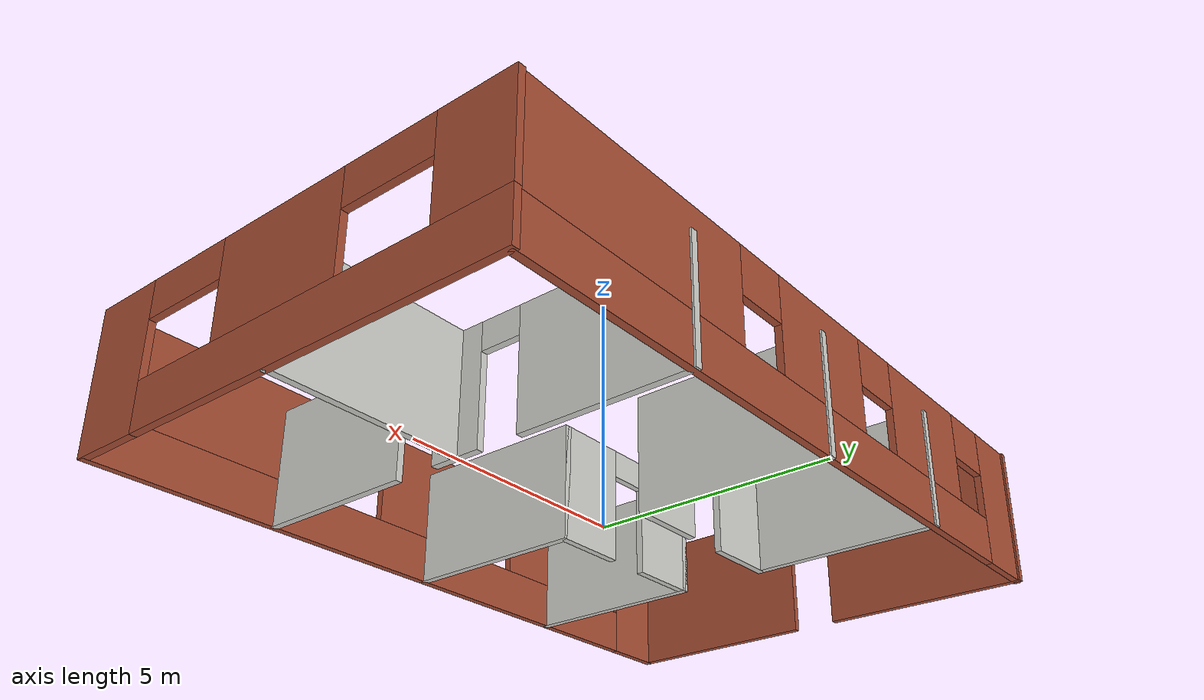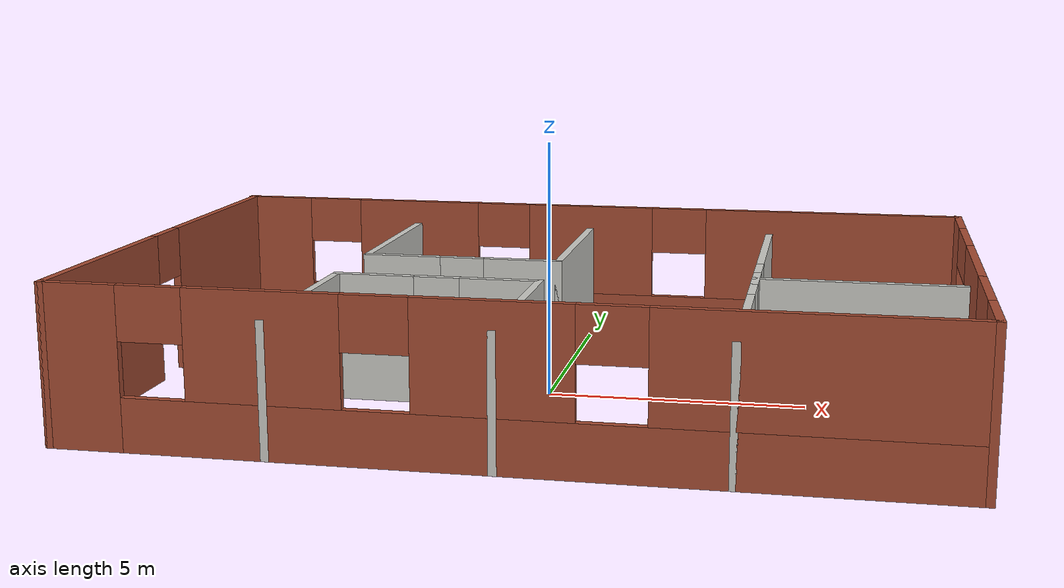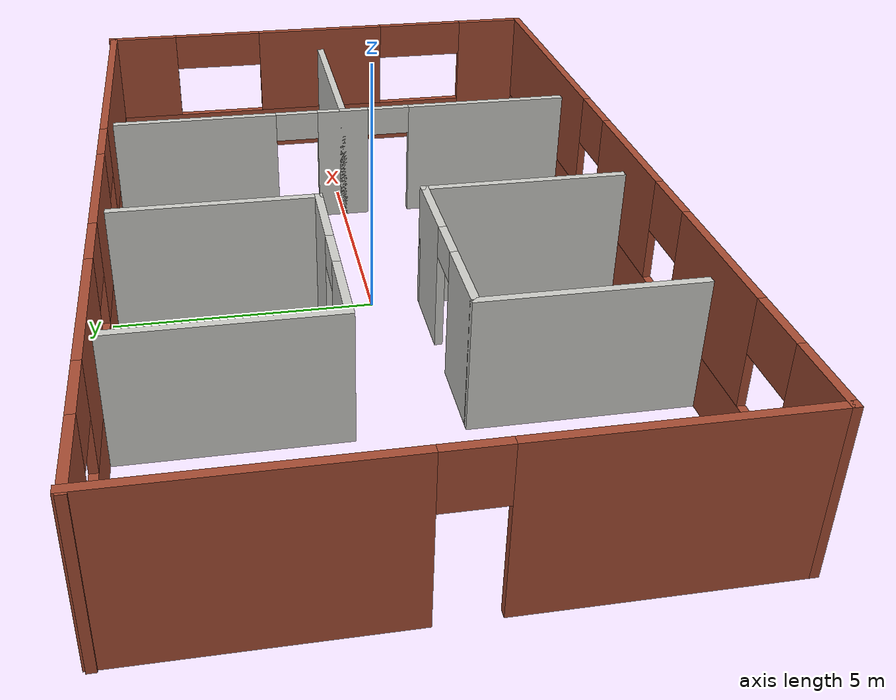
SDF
<?xml version='1.0'?>
<sdf version='1.7'>
  <model name='Project_building'>
    <pose>-0.006499 0 0 0 -0 0</pose>
    <link name='Wall_0'>
      <pose>-7.9935 0 0 0 -0 1.5708</pose>
      <visual name='Wall_0_Visual_0'>
        <pose>-2.7875 0 1.5 0 -0 0</pose>
        <geometry>
          <box>
            <size>4.575 0.15 3</size>
          </box>
        </geometry>
        <material>
          <script>
            <uri>file://media/materials/scripts/gazebo.material</uri>
            <name>Gazebo/Bricks</name>
          </script>
          <ambient>1 1 1 1</ambient>
        </material>
        <meta>
          <layer>0</layer>
        </meta>
      </visual>
      <collision name='Wall_0_Collision_0'>
        <geometry>
          <box>
            <size>4.575 0.15 3</size>
          </box>
        </geometry>
        <pose>-2.7875 0 1.5 0 -0 0</pose>
      </collision>
      <visual name='Wall_0_Visual_1'>
        <pose>2.7875 0 1.5 0 -0 0</pose>
        <geometry>
          <box>
            <size>4.575 0.15 3</size>
          </box>
        </geometry>
        <material>
          <script>
            <uri>file://media/materials/scripts/gazebo.material</uri>
            <name>Gazebo/Bricks</name>
          </script>
          <ambient>1 1 1 1</ambient>
        </material>
        <meta>
          <layer>0</layer>
        </meta>
      </visual>
      <collision name='Wall_0_Collision_1'>
        <geometry>
          <box>
            <size>4.575 0.15 3</size>
          </box>
        </geometry>
        <pose>2.7875 0 1.5 0 -0 0</pose>
      </collision>
      <visual name='Wall_0_Visual_2'>
        <pose>0 0 2.5 0 -0 0</pose>
        <geometry>
          <box>
            <size>1 0.15 1</size>
          </box>
        </geometry>
        <material>
          <script>
            <uri>file://media/materials/scripts/gazebo.material</uri>
            <name>Gazebo/Bricks</name>
          </script>
          <ambient>1 1 1 1</ambient>
        </material>
        <meta>
          <layer>0</layer>
        </meta>
      </visual>
      <collision name='Wall_0_Collision_2'>
        <geometry>
          <box>
            <size>1 0.15 1</size>
          </box>
        </geometry>
        <pose>0 0 2.5 0 -0 0</pose>
      </collision>
    </link>
    <link name='Wall_10'>
      <collision name='Wall_10_Collision'>
        <geometry>
          <box>
            <size>4.15 0.15 2.5</size>
          </box>
        </geometry>
        <pose>0 0 1.25 0 -0 0</pose>
      </collision>
      <visual name='Wall_10_Visual'>
        <pose>0 0 1.25 0 -0 0</pose>
        <geometry>
          <box>
            <size>4.15 0.15 2.5</size>
          </box>
        </geometry>
        <material>
          <script>
            <uri>file://media/materials/scripts/gazebo.material</uri>
            <name>Gazebo/CeilingTiled</name>
          </script>
          <ambient>1 1 1 1</ambient>
        </material>
        <meta>
          <layer>0</layer>
        </meta>
      </visual>
      <pose>-3.9935 3 0 0 -0 -1.5708</pose>
    </link>
    <link name='Wall_11'>
      <pose>-1.9935 1 0 0 -0 0</pose>
      <visual name='Wall_11_Visual_0'>
        <pose>-1.2625 0 1.25 0 -0 0</pose>
        <geometry>
          <box>
            <size>1.625 0.15 2.5</size>
          </box>
        </geometry>
        <material>
          <script>
            <uri>file://media/materials/scripts/gazebo.material</uri>
            <name>Gazebo/CeilingTiled</name>
          </script>
          <ambient>1 1 1 1</ambient>
        </material>
        <meta>
          <layer>0</layer>
        </meta>
      </visual>
      <collision name='Wall_11_Collision_0'>
        <geometry>
          <box>
            <size>1.625 0.15 2.5</size>
          </box>
        </geometry>
        <pose>-1.2625 0 1.25 0 -0 0</pose>
      </collision>
      <visual name='Wall_11_Visual_1'>
        <pose>1.2625 0 1.25 0 -0 0</pose>
        <geometry>
          <box>
            <size>1.625 0.15 2.5</size>
          </box>
        </geometry>
        <material>
          <script>
            <uri>file://media/materials/scripts/gazebo.material</uri>
            <name>Gazebo/CeilingTiled</name>
          </script>
          <ambient>1 1 1 1</ambient>
        </material>
        <meta>
          <layer>0</layer>
        </meta>
      </visual>
      <collision name='Wall_11_Collision_1'>
        <geometry>
          <box>
            <size>1.625 0.15 2.5</size>
          </box>
        </geometry>
        <pose>1.2625 0 1.25 0 -0 0</pose>
      </collision>
      <visual name='Wall_11_Visual_2'>
        <pose>0 0 2.2 0 -0 0</pose>
        <geometry>
          <box>
            <size>0.9 0.15 0.6</size>
          </box>
        </geometry>
        <material>
          <script>
            <uri>file://media/materials/scripts/gazebo.material</uri>
            <name>Gazebo/CeilingTiled</name>
          </script>
          <ambient>1 1 1 1</ambient>
        </material>
        <meta>
          <layer>0</layer>
        </meta>
      </visual>
      <collision name='Wall_11_Collision_2'>
        <geometry>
          <box>
            <size>0.9 0.15 0.6</size>
          </box>
        </geometry>
        <pose>0 0 2.2 0 -0 0</pose>
      </collision>
    </link>
    <link name='Wall_12'>
      <collision name='Wall_12_Collision'>
        <geometry>
          <box>
            <size>4.15 0.15 2.5</size>
          </box>
        </geometry>
        <pose>0 0 1.25 0 -0 0</pose>
      </collision>
      <visual name='Wall_12_Visual'>
        <pose>0 0 1.25 0 -0 0</pose>
        <geometry>
          <box>
            <size>4.15 0.15 2.5</size>
          </box>
        </geometry>
        <material>
          <script>
            <uri>file://media/materials/scripts/gazebo.material</uri>
            <name>Gazebo/CeilingTiled</name>
          </script>
          <ambient>1 1 1 1</ambient>
        </material>
        <meta>
          <layer>0</layer>
        </meta>
      </visual>
      <pose>0.006499 3 0 0 -0 1.5708</pose>
    </link>
    <link name='Wall_14'>
      <collision name='Wall_14_Collision'>
        <geometry>
          <box>
            <size>4.15 0.15 2.5</size>
          </box>
        </geometry>
        <pose>0 0 1.25 0 -0 0</pose>
      </collision>
      <visual name='Wall_14_Visual'>
        <pose>0 0 1.25 0 -0 0</pose>
        <geometry>
          <box>
            <size>4.15 0.15 2.5</size>
          </box>
        </geometry>
        <material>
          <script>
            <uri>file://media/materials/scripts/gazebo.material</uri>
            <name>Gazebo/CeilingTiled</name>
          </script>
          <ambient>1 1 1 1</ambient>
        </material>
        <meta>
          <layer>0</layer>
        </meta>
      </visual>
      <pose>-3.9935 -3 0 0 -0 1.5708</pose>
    </link>
    <link name='Wall_15'>
      <pose>-1.9935 -1 0 0 -0 0</pose>
      <visual name='Wall_15_Visual_0'>
        <pose>-1.2625 0 1.25 0 -0 0</pose>
        <geometry>
          <box>
            <size>1.625 0.15 2.5</size>
          </box>
        </geometry>
        <material>
          <script>
            <uri>file://media/materials/scripts/gazebo.material</uri>
            <name>Gazebo/CeilingTiled</name>
          </script>
          <ambient>1 1 1 1</ambient>
        </material>
        <meta>
          <layer>0</layer>
        </meta>
      </visual>
      <collision name='Wall_15_Collision_0'>
        <geometry>
          <box>
            <size>1.625 0.15 2.5</size>
          </box>
        </geometry>
        <pose>-1.2625 0 1.25 0 -0 0</pose>
      </collision>
      <visual name='Wall_15_Visual_1'>
        <pose>1.2625 0 1.25 0 -0 0</pose>
        <geometry>
          <box>
            <size>1.625 0.15 2.5</size>
          </box>
        </geometry>
        <material>
          <script>
            <uri>file://media/materials/scripts/gazebo.material</uri>
            <name>Gazebo/CeilingTiled</name>
          </script>
          <ambient>1 1 1 1</ambient>
        </material>
        <meta>
          <layer>0</layer>
        </meta>
      </visual>
      <collision name='Wall_15_Collision_1'>
        <geometry>
          <box>
            <size>1.625 0.15 2.5</size>
          </box>
        </geometry>
        <pose>1.2625 0 1.25 0 -0 0</pose>
      </collision>
      <visual name='Wall_15_Visual_2'>
        <pose>0 0 2.2 0 -0 0</pose>
        <geometry>
          <box>
            <size>0.9 0.15 0.6</size>
          </box>
        </geometry>
        <material>
          <script>
            <uri>file://media/materials/scripts/gazebo.material</uri>
            <name>Gazebo/CeilingTiled</name>
          </script>
          <ambient>1 1 1 1</ambient>
        </material>
        <meta>
          <layer>0</layer>
        </meta>
      </visual>
      <collision name='Wall_15_Collision_2'>
        <geometry>
          <box>
            <size>0.9 0.15 0.6</size>
          </box>
        </geometry>
        <pose>0 0 2.2 0 -0 0</pose>
      </collision>
    </link>
    <link name='Wall_16'>
      <collision name='Wall_16_Collision'>
        <geometry>
          <box>
            <size>4.15 0.15 2.5</size>
          </box>
        </geometry>
        <pose>0 0 1.25 0 -0 0</pose>
      </collision>
      <visual name='Wall_16_Visual'>
        <pose>0 0 1.25 0 -0 0</pose>
        <geometry>
          <box>
            <size>4.15 0.15 2.5</size>
          </box>
        </geometry>
        <material>
          <script>
            <uri>file://media/materials/scripts/gazebo.material</uri>
            <name>Gazebo/CeilingTiled</name>
          </script>
          <ambient>1 1 1 1</ambient>
        </material>
        <meta>
          <layer>0</layer>
        </meta>
      </visual>
      <pose>0.006499 -3 0 0 -0 -1.5708</pose>
    </link>
    <link name='Wall_18'>
      <collision name='Wall_18_Collision'>
        <geometry>
          <box>
            <size>4.15 0.15 2.5</size>
          </box>
        </geometry>
        <pose>0 0 1.25 0 -0 0</pose>
      </collision>
      <visual name='Wall_18_Visual'>
        <pose>0 0 1.25 0 -0 0</pose>
        <geometry>
          <box>
            <size>4.15 0.15 2.5</size>
          </box>
        </geometry>
        <material>
          <script>
            <uri>file://media/materials/scripts/gazebo.material</uri>
            <name>Gazebo/CeilingTiled</name>
          </script>
          <ambient>1 1 1 1</ambient>
        </material>
        <meta>
          <layer>0</layer>
        </meta>
      </visual>
      <pose>6.0065 0 0 0 -0 0</pose>
    </link>
    <link name='Wall_2'>
      <pose>0.006499 -5 0 0 -0 0</pose>
      <visual name='Wall_2_Visual_0'>
        <pose>-7.3375 0 1.5 0 -0 0</pose>
        <geometry>
          <box>
            <size>1.475 0.15 3</size>
          </box>
        </geometry>
        <material>
          <script>
            <uri>file://media/materials/scripts/gazebo.material</uri>
            <name>Gazebo/Bricks</name>
          </script>
          <ambient>1 1 1 1</ambient>
        </material>
        <meta>
          <layer>0</layer>
        </meta>
      </visual>
      <collision name='Wall_2_Collision_0'>
        <geometry>
          <box>
            <size>1.475 0.15 3</size>
          </box>
        </geometry>
        <pose>-7.3375 0 1.5 0 -0 0</pose>
      </collision>
      <visual name='Wall_2_Visual_1'>
        <pose>0.7375 0 0.5 0 -0 0</pose>
        <geometry>
          <box>
            <size>14.675 0.15 1</size>
          </box>
        </geometry>
        <material>
          <script>
            <uri>file://media/materials/scripts/gazebo.material</uri>
            <name>Gazebo/Bricks</name>
          </script>
          <ambient>1 1 1 1</ambient>
        </material>
        <meta>
          <layer>0</layer>
        </meta>
      </visual>
      <collision name='Wall_2_Collision_1'>
        <geometry>
          <box>
            <size>14.675 0.15 1</size>
          </box>
        </geometry>
        <pose>0.7375 0 0.5 0 -0 0</pose>
      </collision>
      <visual name='Wall_2_Visual_2'>
        <pose>-4 0 2 0 -0 0</pose>
        <geometry>
          <box>
            <size>2.8 0.15 2</size>
          </box>
        </geometry>
        <material>
          <script>
            <uri>file://media/materials/scripts/gazebo.material</uri>
            <name>Gazebo/Bricks</name>
          </script>
          <ambient>1 1 1 1</ambient>
        </material>
        <meta>
          <layer>0</layer>
        </meta>
      </visual>
      <collision name='Wall_2_Collision_2'>
        <geometry>
          <box>
            <size>2.8 0.15 2</size>
          </box>
        </geometry>
        <pose>-4 0 2 0 -0 0</pose>
      </collision>
      <visual name='Wall_2_Visual_3'>
        <pose>0 0 2 0 -0 0</pose>
        <geometry>
          <box>
            <size>2.8 0.15 2</size>
          </box>
        </geometry>
        <material>
          <script>
            <uri>file://media/materials/scripts/gazebo.material</uri>
            <name>Gazebo/Bricks</name>
          </script>
          <ambient>1 1 1 1</ambient>
        </material>
        <meta>
          <layer>0</layer>
        </meta>
      </visual>
      <collision name='Wall_2_Collision_3'>
        <geometry>
          <box>
            <size>2.8 0.15 2</size>
          </box>
        </geometry>
        <pose>0 0 2 0 -0 0</pose>
      </collision>
      <visual name='Wall_2_Visual_4'>
        <pose>5.3375 0 2 0 -0 0</pose>
        <geometry>
          <box>
            <size>5.475 0.15 2</size>
          </box>
        </geometry>
        <material>
          <script>
            <uri>file://media/materials/scripts/gazebo.material</uri>
            <name>Gazebo/Bricks</name>
          </script>
          <ambient>1 1 1 1</ambient>
        </material>
        <meta>
          <layer>0</layer>
        </meta>
      </visual>
      <collision name='Wall_2_Collision_4'>
        <geometry>
          <box>
            <size>5.475 0.15 2</size>
          </box>
        </geometry>
        <pose>5.3375 0 2 0 -0 0</pose>
      </collision>
      <visual name='Wall_2_Visual_5'>
        <pose>-6 0 2.5 0 -0 0</pose>
        <geometry>
          <box>
            <size>1.2 0.15 1</size>
          </box>
        </geometry>
        <material>
          <script>
            <uri>file://media/materials/scripts/gazebo.material</uri>
            <name>Gazebo/Bricks</name>
          </script>
          <ambient>1 1 1 1</ambient>
        </material>
        <meta>
          <layer>0</layer>
        </meta>
      </visual>
      <collision name='Wall_2_Collision_5'>
        <geometry>
          <box>
            <size>1.2 0.15 1</size>
          </box>
        </geometry>
        <pose>-6 0 2.5 0 -0 0</pose>
      </collision>
      <visual name='Wall_2_Visual_6'>
        <pose>-2 0 2.5 0 -0 0</pose>
        <geometry>
          <box>
            <size>1.2 0.15 1</size>
          </box>
        </geometry>
        <material>
          <script>
            <uri>file://media/materials/scripts/gazebo.material</uri>
            <name>Gazebo/Bricks</name>
          </script>
          <ambient>1 1 1 1</ambient>
        </material>
        <meta>
          <layer>0</layer>
        </meta>
      </visual>
      <collision name='Wall_2_Collision_6'>
        <geometry>
          <box>
            <size>1.2 0.15 1</size>
          </box>
        </geometry>
        <pose>-2 0 2.5 0 -0 0</pose>
      </collision>
      <visual name='Wall_2_Visual_7'>
        <pose>2 0 2.5 0 -0 0</pose>
        <geometry>
          <box>
            <size>1.2 0.15 1</size>
          </box>
        </geometry>
        <material>
          <script>
            <uri>file://media/materials/scripts/gazebo.material</uri>
            <name>Gazebo/Bricks</name>
          </script>
          <ambient>1 1 1 1</ambient>
        </material>
        <meta>
          <layer>0</layer>
        </meta>
      </visual>
      <collision name='Wall_2_Collision_7'>
        <geometry>
          <box>
            <size>1.2 0.15 1</size>
          </box>
        </geometry>
        <pose>2 0 2.5 0 -0 0</pose>
      </collision>
    </link>
    <link name='Wall_4'>
      <pose>-0.032501 4.961 0 0 -0 0</pose>
      <visual name='Wall_4_Visual_0'>
        <pose>-7.318 0 1.5 0 -0 0</pose>
        <geometry>
          <box>
            <size>1.514 0.15 3</size>
          </box>
        </geometry>
        <material>
          <script>
            <uri>file://media/materials/scripts/gazebo.material</uri>
            <name>Gazebo/Bricks</name>
          </script>
          <ambient>1 1 1 1</ambient>
        </material>
        <meta>
          <layer>0</layer>
        </meta>
      </visual>
      <collision name='Wall_4_Collision_0'>
        <geometry>
          <box>
            <size>1.514 0.15 3</size>
          </box>
        </geometry>
        <pose>-7.318 0 1.5 0 -0 0</pose>
      </collision>
      <visual name='Wall_4_Visual_1'>
        <pose>0.757 0 0.5 0 -0 0</pose>
        <geometry>
          <box>
            <size>14.636 0.15 1</size>
          </box>
        </geometry>
        <material>
          <script>
            <uri>file://media/materials/scripts/gazebo.material</uri>
            <name>Gazebo/Bricks</name>
          </script>
          <ambient>1 1 1 1</ambient>
        </material>
        <meta>
          <layer>0</layer>
        </meta>
      </visual>
      <collision name='Wall_4_Collision_1'>
        <geometry>
          <box>
            <size>14.636 0.15 1</size>
          </box>
        </geometry>
        <pose>0.757 0 0.5 0 -0 0</pose>
      </collision>
      <visual name='Wall_4_Visual_2'>
        <pose>-3.961 0 2 0 -0 0</pose>
        <geometry>
          <box>
            <size>2.8 0.15 2</size>
          </box>
        </geometry>
        <material>
          <script>
            <uri>file://media/materials/scripts/gazebo.material</uri>
            <name>Gazebo/Bricks</name>
          </script>
          <ambient>1 1 1 1</ambient>
        </material>
        <meta>
          <layer>0</layer>
        </meta>
      </visual>
      <collision name='Wall_4_Collision_2'>
        <geometry>
          <box>
            <size>2.8 0.15 2</size>
          </box>
        </geometry>
        <pose>-3.961 0 2 0 -0 0</pose>
      </collision>
      <visual name='Wall_4_Visual_3'>
        <pose>0.039 0 2 0 -0 0</pose>
        <geometry>
          <box>
            <size>2.8 0.15 2</size>
          </box>
        </geometry>
        <material>
          <script>
            <uri>file://media/materials/scripts/gazebo.material</uri>
            <name>Gazebo/Bricks</name>
          </script>
          <ambient>1 1 1 1</ambient>
        </material>
        <meta>
          <layer>0</layer>
        </meta>
      </visual>
      <collision name='Wall_4_Collision_3'>
        <geometry>
          <box>
            <size>2.8 0.15 2</size>
          </box>
        </geometry>
        <pose>0.039 0 2 0 -0 0</pose>
      </collision>
      <visual name='Wall_4_Visual_4'>
        <pose>5.357 0 2 0 -0 0</pose>
        <geometry>
          <box>
            <size>5.436 0.15 2</size>
          </box>
        </geometry>
        <material>
          <script>
            <uri>file://media/materials/scripts/gazebo.material</uri>
            <name>Gazebo/Bricks</name>
          </script>
          <ambient>1 1 1 1</ambient>
        </material>
        <meta>
          <layer>0</layer>
        </meta>
      </visual>
      <collision name='Wall_4_Collision_4'>
        <geometry>
          <box>
            <size>5.436 0.15 2</size>
          </box>
        </geometry>
        <pose>5.357 0 2 0 -0 0</pose>
      </collision>
      <visual name='Wall_4_Visual_5'>
        <pose>-5.961 0 2.5 0 -0 0</pose>
        <geometry>
          <box>
            <size>1.2 0.15 1</size>
          </box>
        </geometry>
        <material>
          <script>
            <uri>file://media/materials/scripts/gazebo.material</uri>
            <name>Gazebo/Bricks</name>
          </script>
          <ambient>1 1 1 1</ambient>
        </material>
        <meta>
          <layer>0</layer>
        </meta>
      </visual>
      <collision name='Wall_4_Collision_5'>
        <geometry>
          <box>
            <size>1.2 0.15 1</size>
          </box>
        </geometry>
        <pose>-5.961 0 2.5 0 -0 0</pose>
      </collision>
      <visual name='Wall_4_Visual_6'>
        <pose>-1.961 0 2.5 0 -0 0</pose>
        <geometry>
          <box>
            <size>1.2 0.15 1</size>
          </box>
        </geometry>
        <material>
          <script>
            <uri>file://media/materials/scripts/gazebo.material</uri>
            <name>Gazebo/Bricks</name>
          </script>
          <ambient>1 1 1 1</ambient>
        </material>
        <meta>
          <layer>0</layer>
        </meta>
      </visual>
      <collision name='Wall_4_Collision_6'>
        <geometry>
          <box>
            <size>1.2 0.15 1</size>
          </box>
        </geometry>
        <pose>-1.961 0 2.5 0 -0 0</pose>
      </collision>
      <visual name='Wall_4_Visual_7'>
        <pose>2.039 0 2.5 0 -0 0</pose>
        <geometry>
          <box>
            <size>1.2 0.15 1</size>
          </box>
        </geometry>
        <material>
          <script>
            <uri>file://media/materials/scripts/gazebo.material</uri>
            <name>Gazebo/Bricks</name>
          </script>
          <ambient>1 1 1 1</ambient>
        </material>
        <meta>
          <layer>0</layer>
        </meta>
      </visual>
      <collision name='Wall_4_Collision_7'>
        <geometry>
          <box>
            <size>1.2 0.15 1</size>
          </box>
        </geometry>
        <pose>2.039 0 2.5 0 -0 0</pose>
      </collision>
    </link>
    <link name='Wall_6'>
      <pose>8.0325 0 0 0 -0 1.5708</pose>
      <visual name='Wall_6_Visual_0'>
        <pose>-4.2875 0 1.5 0 -0 0</pose>
        <geometry>
          <box>
            <size>1.575 0.15 3</size>
          </box>
        </geometry>
        <material>
          <script>
            <uri>file://media/materials/scripts/gazebo.material</uri>
            <name>Gazebo/Bricks</name>
          </script>
          <ambient>1 1 1 1</ambient>
        </material>
        <meta>
          <layer>0</layer>
        </meta>
      </visual>
      <collision name='Wall_6_Collision_0'>
        <geometry>
          <box>
            <size>1.575 0.15 3</size>
          </box>
        </geometry>
        <pose>-4.2875 0 1.5 0 -0 0</pose>
      </collision>
      <visual name='Wall_6_Visual_1'>
        <pose>0.7875 0 0.5 0 -0 0</pose>
        <geometry>
          <box>
            <size>8.575 0.15 1</size>
          </box>
        </geometry>
        <material>
          <script>
            <uri>file://media/materials/scripts/gazebo.material</uri>
            <name>Gazebo/Bricks</name>
          </script>
          <ambient>1 1 1 1</ambient>
        </material>
        <meta>
          <layer>0</layer>
        </meta>
      </visual>
      <collision name='Wall_6_Collision_1'>
        <geometry>
          <box>
            <size>8.575 0.15 1</size>
          </box>
        </geometry>
        <pose>0.7875 0 0.5 0 -0 0</pose>
      </collision>
      <visual name='Wall_6_Visual_2'>
        <pose>0 0 2 0 -0 0</pose>
        <geometry>
          <box>
            <size>3 0.15 2</size>
          </box>
        </geometry>
        <material>
          <script>
            <uri>file://media/materials/scripts/gazebo.material</uri>
            <name>Gazebo/Bricks</name>
          </script>
          <ambient>1 1 1 1</ambient>
        </material>
        <meta>
          <layer>0</layer>
        </meta>
      </visual>
      <collision name='Wall_6_Collision_2'>
        <geometry>
          <box>
            <size>3 0.15 2</size>
          </box>
        </geometry>
        <pose>0 0 2 0 -0 0</pose>
      </collision>
      <visual name='Wall_6_Visual_3'>
        <pose>4.2875 0 2 0 -0 0</pose>
        <geometry>
          <box>
            <size>1.575 0.15 2</size>
          </box>
        </geometry>
        <material>
          <script>
            <uri>file://media/materials/scripts/gazebo.material</uri>
            <name>Gazebo/Bricks</name>
          </script>
          <ambient>1 1 1 1</ambient>
        </material>
        <meta>
          <layer>0</layer>
        </meta>
      </visual>
      <collision name='Wall_6_Collision_3'>
        <geometry>
          <box>
            <size>1.575 0.15 2</size>
          </box>
        </geometry>
        <pose>4.2875 0 2 0 -0 0</pose>
      </collision>
      <visual name='Wall_6_Visual_4'>
        <pose>-2.5 0 2.6 0 -0 0</pose>
        <geometry>
          <box>
            <size>2 0.15 0.8</size>
          </box>
        </geometry>
        <material>
          <script>
            <uri>file://media/materials/scripts/gazebo.material</uri>
            <name>Gazebo/Bricks</name>
          </script>
          <ambient>1 1 1 1</ambient>
        </material>
        <meta>
          <layer>0</layer>
        </meta>
      </visual>
      <collision name='Wall_6_Collision_4'>
        <geometry>
          <box>
            <size>2 0.15 0.8</size>
          </box>
        </geometry>
        <pose>-2.5 0 2.6 0 -0 0</pose>
      </collision>
      <visual name='Wall_6_Visual_5'>
        <pose>2.5 0 2.6 0 -0 0</pose>
        <geometry>
          <box>
            <size>2 0.15 0.8</size>
          </box>
        </geometry>
        <material>
          <script>
            <uri>file://media/materials/scripts/gazebo.material</uri>
            <name>Gazebo/Bricks</name>
          </script>
          <ambient>1 1 1 1</ambient>
        </material>
        <meta>
          <layer>0</layer>
        </meta>
      </visual>
      <collision name='Wall_6_Collision_5'>
        <geometry>
          <box>
            <size>2 0.15 0.8</size>
          </box>
        </geometry>
        <pose>2.5 0 2.6 0 -0 0</pose>
      </collision>
    </link>
    <link name='Wall_8'>
      <pose>4.0065 0 0 0 -0 1.5708</pose>
      <visual name='Wall_8_Visual_0'>
        <pose>-3.2625 0 1.25 0 -0 0</pose>
        <geometry>
          <box>
            <size>3.625 0.15 2.5</size>
          </box>
        </geometry>
        <material>
          <script>
            <uri>file://media/materials/scripts/gazebo.material</uri>
            <name>Gazebo/CeilingTiled</name>
          </script>
          <ambient>1 1 1 1</ambient>
        </material>
        <meta>
          <layer>0</layer>
        </meta>
      </visual>
      <collision name='Wall_8_Collision_0'>
        <geometry>
          <box>
            <size>3.625 0.15 2.5</size>
          </box>
        </geometry>
        <pose>-3.2625 0 1.25 0 -0 0</pose>
      </collision>
      <visual name='Wall_8_Visual_1'>
        <pose>0 0 1.25 0 -0 0</pose>
        <geometry>
          <box>
            <size>1.1 0.15 2.5</size>
          </box>
        </geometry>
        <material>
          <script>
            <uri>file://media/materials/scripts/gazebo.material</uri>
            <name>Gazebo/CeilingTiled</name>
          </script>
          <ambient>1 1 1 1</ambient>
        </material>
        <meta>
          <layer>0</layer>
        </meta>
      </visual>
      <collision name='Wall_8_Collision_1'>
        <geometry>
          <box>
            <size>1.1 0.15 2.5</size>
          </box>
        </geometry>
        <pose>0 0 1.25 0 -0 0</pose>
      </collision>
      <visual name='Wall_8_Visual_2'>
        <pose>3.2625 0 1.25 0 -0 0</pose>
        <geometry>
          <box>
            <size>3.625 0.15 2.5</size>
          </box>
        </geometry>
        <material>
          <script>
            <uri>file://media/materials/scripts/gazebo.material</uri>
            <name>Gazebo/CeilingTiled</name>
          </script>
          <ambient>1 1 1 1</ambient>
        </material>
        <meta>
          <layer>0</layer>
        </meta>
      </visual>
      <collision name='Wall_8_Collision_2'>
        <geometry>
          <box>
            <size>3.625 0.15 2.5</size>
          </box>
        </geometry>
        <pose>3.2625 0 1.25 0 -0 0</pose>
      </collision>
      <visual name='Wall_8_Visual_3'>
        <pose>-1 0 2.2 0 -0 0</pose>
        <geometry>
          <box>
            <size>0.9 0.15 0.6</size>
          </box>
        </geometry>
        <material>
          <script>
            <uri>file://media/materials/scripts/gazebo.material</uri>
            <name>Gazebo/CeilingTiled</name>
          </script>
          <ambient>1 1 1 1</ambient>
        </material>
        <meta>
          <layer>0</layer>
        </meta>
      </visual>
      <collision name='Wall_8_Collision_3'>
        <geometry>
          <box>
            <size>0.9 0.15 0.6</size>
          </box>
        </geometry>
        <pose>-1 0 2.2 0 -0 0</pose>
      </collision>
      <visual name='Wall_8_Visual_4'>
        <pose>1 0 2.2 0 -0 0</pose>
        <geometry>
          <box>
            <size>0.9 0.15 0.6</size>
          </box>
        </geometry>
        <material>
          <script>
            <uri>file://media/materials/scripts/gazebo.material</uri>
            <name>Gazebo/CeilingTiled</name>
          </script>
          <ambient>1 1 1 1</ambient>
        </material>
        <meta>
          <layer>0</layer>
        </meta>
      </visual>
      <collision name='Wall_8_Collision_4'>
        <geometry>
          <box>
            <size>0.9 0.15 0.6</size>
          </box>
        </geometry>
        <pose>1 0 2.2 0 -0 0</pose>
      </collision>
    </link>
    <static>1</static>
  </model>
</sdf>
